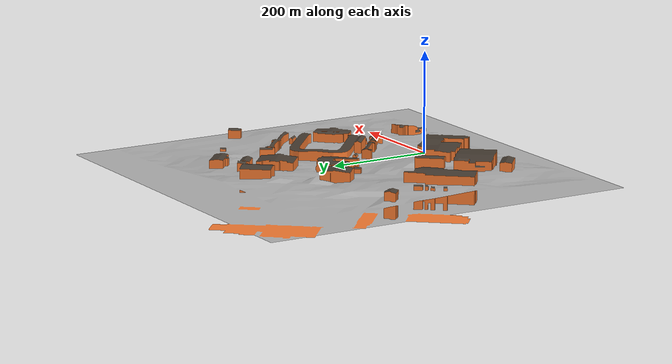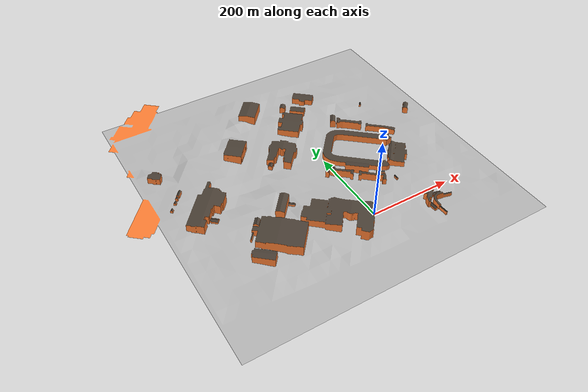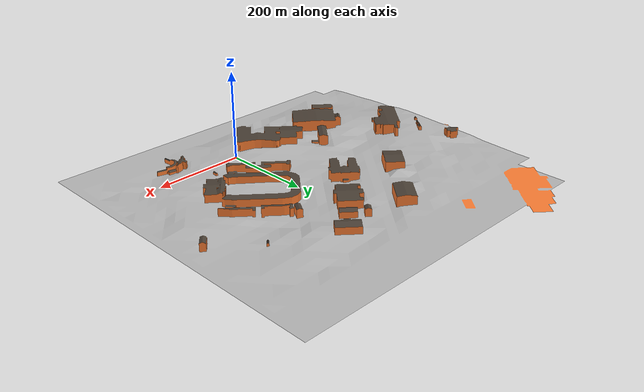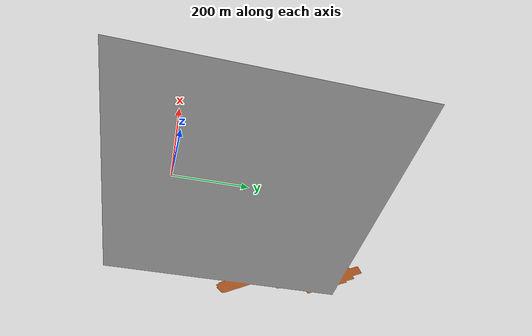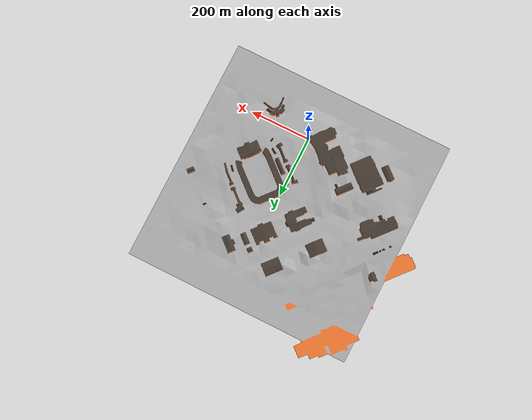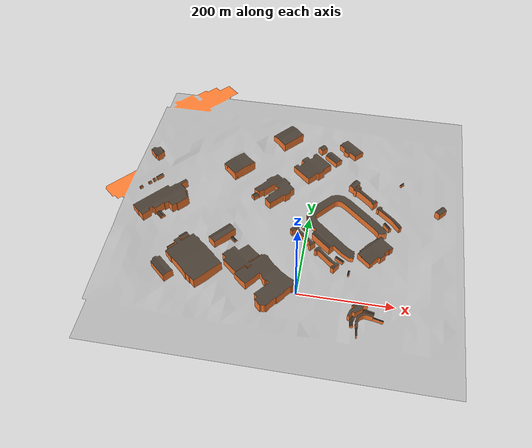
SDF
<?xml version='1.0'?>
<sdf version='1.7'>
  <model name='Campus_Envirornment'>
    <link name='body'>
      <self_collide>0</self_collide>
      <enable_wind>0</enable_wind>
      <kinematic>0</kinematic>
      <pose>-38.267696 200.605194 -0.28 0 -0 0</pose>
      <visual name='visual'>
        <material>
          <shader type='pixel'/>
        </material>
        <geometry>
          <mesh>
            <uri>model://Campus_Envirornment/meshes/campus_with_terrain.dae</uri>
          </mesh>
        </geometry>
        <pose>0 0 0 0 0 0</pose>
        <transparency>0</transparency>
        <cast_shadows>1</cast_shadows>
      </visual>
      <collision name="collision">
        <geometry>
          <mesh>
            <uri>model://Campus_Envirornment/meshes/campus_with_terrain.dae</uri>
          </mesh>
        </geometry>
      </collision>
    </link>
    <static>1</static>
    <allow_auto_disable>1</allow_auto_disable>
  </model>
</sdf>
